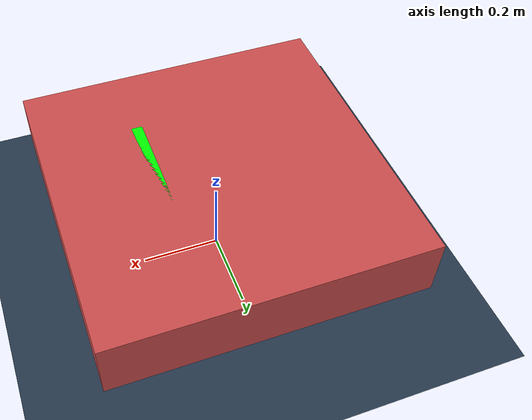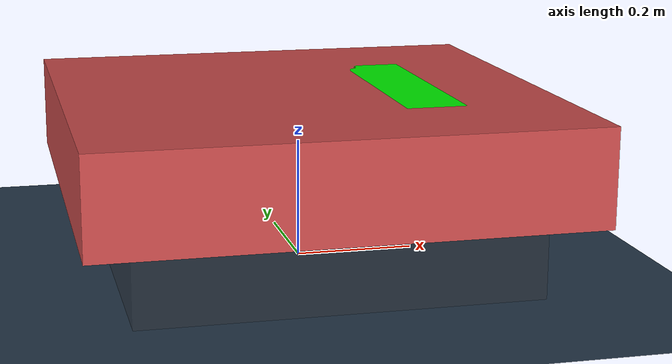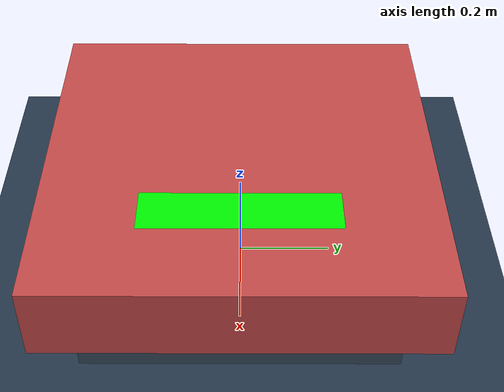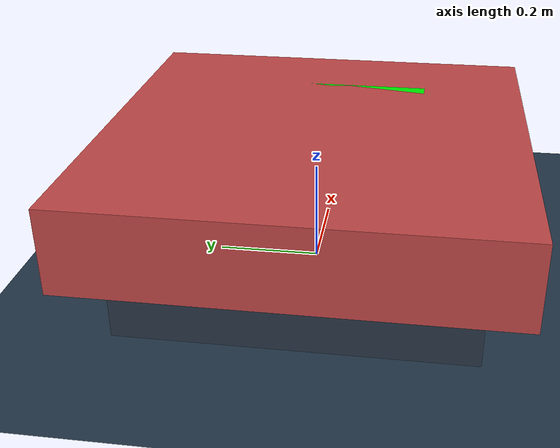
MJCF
<mujoco model="Block_Virtual_Force_Chassis">
    <compiler angle="degree" coordinate="local" meshdir="./"/>

    <option gravity="0 0 -9.81" timestep="0.001" iterations="100" tolerance="1e-12">
        <flag contact="enable" energy="enable"/>
    </option>

    <asset>
        <texture type="skybox" builtin="gradient" rgb1="0.3 0.5 0.7" rgb2="0 0 0" width="512" height="512"/>
        <texture name="texplane" type="2d" builtin="checker" rgb1=".2 .3 .4" rgb2=".1 0.15 0.2" width="512" height="512" mark="cross" markrgb=".8 .8 .8"/>
        <material name="matplane" reflectance="0.3" texture="texplane" texrepeat="2 2" texuniform="true"/>
    </asset>

    <worldbody>
        <light directional="true" diffuse=".8 .8 .8" specular=".2 .2 .2" pos="0 0 10" dir="0 0 -1"/>
        <geom name="floor" pos="0 0 0" size="0 0 .25" type="plane" material="matplane" condim="3" friction="0.05 0.005 0.0005" solref="0.02 1" solimp="0.9 0.95 0.001"/>

        <body name="chassis" pos="0 0 0.209" euler="0 0 0">
            <freejoint name="root"/>

            <!-- 可视化主体 -->
            <geom name="chassis_visual_main" type="box" size="0.4 0.4 0.08" pos="0 0 0.0" rgba="0.8 0.3 0.3 1" contype="0" conaffinity="0" mass="0"/>

            <!-- 单一接触块：用于替代原舵轮接触 -->
            <geom
                name="contact_block"
                type="box"
                size="0.325 0.325 0.058"
                pos="0 0 -0.151"
                rgba="0.2 0.2 0.2 0.35"
                friction="0.00 0.000 0.0000"
                contype="1"
                conaffinity="1"
                mass="0"/>

            <!-- 等效质量分布（总质量约 22kg）：
                 16kg 偏置主块 + 四角各 1.5kg -->
            <geom name="mass_main" type="box" size="0.35 0.25 0.04" pos="0.18 0.057 0.0" rgba="0.8 0.3 0.3 0" mass="16" contype="0" conaffinity="0"/>
            <geom name="mass_corner0" type="sphere" size="0.02" pos="0.325 0.325 -0.151" rgba="0 0 0 0" mass="1.5" contype="0" conaffinity="0"/>
            <geom name="mass_corner1" type="sphere" size="0.02" pos="0.325 -0.325 -0.151" rgba="0 0 0 0" mass="1.5" contype="0" conaffinity="0"/>
            <geom name="mass_corner2" type="sphere" size="0.02" pos="-0.325 0.325 -0.151" rgba="0 0 0 0" mass="1.5" contype="0" conaffinity="0"/>
            <geom name="mass_corner3" type="sphere" size="0.02" pos="-0.325 -0.325 -0.151" rgba="0 0 0 0" mass="1.5" contype="0" conaffinity="0"/>

            <geom name="head_marker" type="box" size="0.05 0.2 0.01" pos="0.18 0 0.07" rgba="0 1 0 1" contype="0" conaffinity="0" mass="0"/>
        </body>
    </worldbody>
</mujoco>
